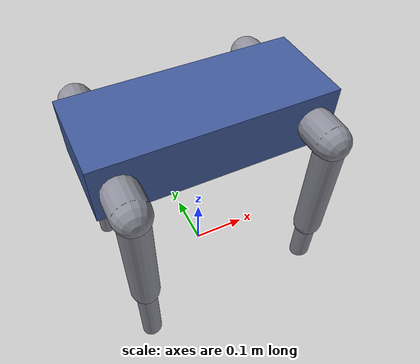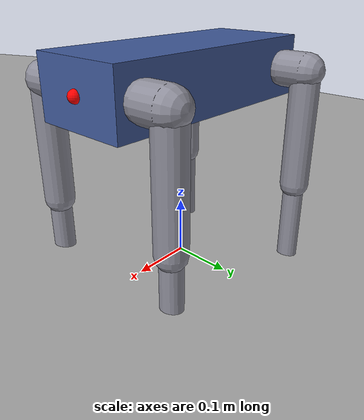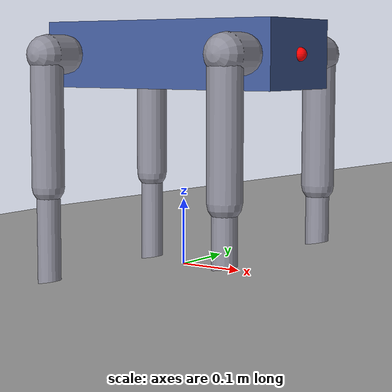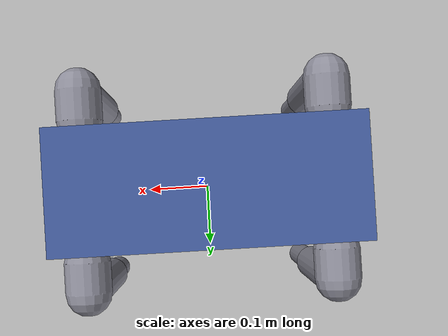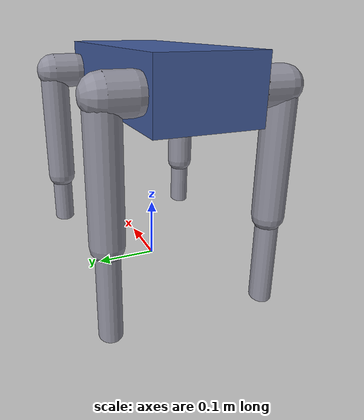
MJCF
<mujoco model="quadbook_quadruped">

  <compiler angle="radian" autolimits="true"/>
  <option timestep="0.002" integrator="implicitfast" solver="Newton" gravity="0 0 -9.81"/>

  <visual>
    <global offwidth="1600" offheight="1000"/>
    <quality shadowsize="4096"/>
  </visual>

  <default>
    <!-- Shared by all joints: damping and armature inertia (motor rotor). Both contribute a lot to numerical stability -->
    <joint damping="0.2" armature="0.01" frictionloss="0.02"/>
    <geom condim="3" friction="1.0 0.005 0.0001" solref="0.02 1" solimp="0.9 0.95 0.001"/>
    <motor ctrlrange="-12 12" gear="1"/>

    <default class="torso">
      <geom type="box" rgba="0.25 0.35 0.6 1"/>
    </default>
    <default class="leg">
      <!-- Leg links get separate contype/conaffinity so they never collide with each other: only the feet touch the floor -->
      <geom type="capsule" rgba="0.55 0.55 0.6 1" contype="0" conaffinity="0"/>
      <joint type="hinge"/>
    </default>
    <default class="abduction">
      <joint axis="1 0 0" range="-0.8 0.8"/>
    </default>
    <default class="hip">
      <joint axis="0 1 0" range="-1.2 2.4"/>
    </default>
    <default class="knee">
      <joint axis="0 1 0" range="-2.6 -0.3"/>
    </default>
    <default class="foot">
      <geom type="sphere" size="0.02" rgba="0.15 0.15 0.15 1" contype="1" conaffinity="1" friction="1.0 0.005 0.0001"/>
    </default>
  </default>

  <asset>
    <texture name="grid" type="2d" builtin="checker" rgb1="0.85 0.85 0.85" rgb2="0.65 0.65 0.65" width="300" height="300"/>
    <material name="grid" texture="grid" texrepeat="10 10" reflectance="0.05"/>
    <texture type="skybox" builtin="gradient" rgb1="0.95 0.95 1" rgb2="0.6 0.7 0.9" width="32" height="512"/>
  </asset>

  <worldbody>
    <light pos="1 1 3" dir="-0.3 -0.3 -1" diffuse="0.9 0.9 0.9" castshadow="true"/>
    <geom name="floor" type="plane" size="5 5 0.1" material="grid" contype="1" conaffinity="1" euler="0 -0.17453 0"/>
    <camera name="side" pos="1.6 -1.6 0.7" xyaxes="0.7 0.7 0 -0.25 0.25 0.94"/>
    <camera name="front" pos="1.8 0 0.5" xyaxes="0 1 0 -0.25 0 0.97"/>

    <body name="torso" pos="0 0 0.32">
      <freejoint name="root"/>
      <geom name="torso_geom" class="torso" size="0.2 0.08 0.05" mass="4.0"/>
      <site name="imu" pos="0 0 0" size="0.01"/>
      <site name="torso_front" pos="0.2 0 0" size="0.01" rgba="1 0 0 1"/>

      <!-- ===== Left front leg LF ===== -->
      <body name="LF_hip" pos="0.16 0.09 0">
        <joint name="LF_abduction" class="abduction"/>
        <geom class="leg" fromto="0 0 0 0 0.04 0" size="0.03" mass="0.2"/>
        <body name="LF_thigh" pos="0 0.04 0">
          <joint name="LF_hip" class="hip"/>
          <geom class="leg" fromto="0 0 0 0 0 -0.2" size="0.025" mass="0.6"/>
          <body name="LF_calf" pos="0 0 -0.2">
            <joint name="LF_knee" class="knee"/>
            <geom class="leg" fromto="0 0 0 0 0 -0.2" size="0.018" mass="0.3"/>
            <geom name="LF_foot" class="foot" pos="0 0 -0.2" mass="0.05"/>
            <site name="LF_foot_site" pos="0 0 -0.2" size="0.022"/>
          </body>
        </body>
      </body>

      <!-- ===== Right front leg RF ===== -->
      <body name="RF_hip" pos="0.16 -0.09 0">
        <joint name="RF_abduction" class="abduction"/>
        <geom class="leg" fromto="0 0 0 0 -0.04 0" size="0.03" mass="0.2"/>
        <body name="RF_thigh" pos="0 -0.04 0">
          <joint name="RF_hip" class="hip"/>
          <geom class="leg" fromto="0 0 0 0 0 -0.2" size="0.025" mass="0.6"/>
          <body name="RF_calf" pos="0 0 -0.2">
            <joint name="RF_knee" class="knee"/>
            <geom class="leg" fromto="0 0 0 0 0 -0.2" size="0.018" mass="0.3"/>
            <geom name="RF_foot" class="foot" pos="0 0 -0.2" mass="0.05"/>
            <site name="RF_foot_site" pos="0 0 -0.2" size="0.022"/>
          </body>
        </body>
      </body>

      <!-- ===== Left hind leg LH ===== -->
      <body name="LH_hip" pos="-0.16 0.09 0">
        <joint name="LH_abduction" class="abduction"/>
        <geom class="leg" fromto="0 0 0 0 0.04 0" size="0.03" mass="0.2"/>
        <body name="LH_thigh" pos="0 0.04 0">
          <joint name="LH_hip" class="hip"/>
          <geom class="leg" fromto="0 0 0 0 0 -0.2" size="0.025" mass="0.6"/>
          <body name="LH_calf" pos="0 0 -0.2">
            <joint name="LH_knee" class="knee"/>
            <geom class="leg" fromto="0 0 0 0 0 -0.2" size="0.018" mass="0.3"/>
            <geom name="LH_foot" class="foot" pos="0 0 -0.2" mass="0.05"/>
            <site name="LH_foot_site" pos="0 0 -0.2" size="0.022"/>
          </body>
        </body>
      </body>

      <!-- ===== Right hind leg RH ===== -->
      <body name="RH_hip" pos="-0.16 -0.09 0">
        <joint name="RH_abduction" class="abduction"/>
        <geom class="leg" fromto="0 0 0 0 -0.04 0" size="0.03" mass="0.2"/>
        <body name="RH_thigh" pos="0 -0.04 0">
          <joint name="RH_hip" class="hip"/>
          <geom class="leg" fromto="0 0 0 0 0 -0.2" size="0.025" mass="0.6"/>
          <body name="RH_calf" pos="0 0 -0.2">
            <joint name="RH_knee" class="knee"/>
            <geom class="leg" fromto="0 0 0 0 0 -0.2" size="0.018" mass="0.3"/>
            <geom name="RH_foot" class="foot" pos="0 0 -0.2" mass="0.05"/>
            <site name="RH_foot_site" pos="0 0 -0.2" size="0.022"/>
          </body>
        </body>
      </body>
    </body>
  </worldbody>

  <!-- Actuators: one torque motor per joint. Order is LF, RF, LH, RH × (abduction, hip, knee) -->
  <actuator>
    <motor name="LF_abduction" joint="LF_abduction"/>
    <motor name="LF_hip" joint="LF_hip"/>
    <motor name="LF_knee" joint="LF_knee"/>
    <motor name="RF_abduction" joint="RF_abduction"/>
    <motor name="RF_hip" joint="RF_hip"/>
    <motor name="RF_knee" joint="RF_knee"/>
    <motor name="LH_abduction" joint="LH_abduction"/>
    <motor name="LH_hip" joint="LH_hip"/>
    <motor name="LH_knee" joint="LH_knee"/>
    <motor name="RH_abduction" joint="RH_abduction"/>
    <motor name="RH_hip" joint="RH_hip"/>
    <motor name="RH_knee" joint="RH_knee"/>
  </actuator>

  <!-- Sensors: 12 joints × (position, velocity), torso IMU (orientation, angular velocity, acceleration), 4 foot contacts -->
  <sensor>
    <jointpos name="LF_abduction_pos" joint="LF_abduction"/>
    <jointpos name="LF_hip_pos" joint="LF_hip"/>
    <jointpos name="LF_knee_pos" joint="LF_knee"/>
    <jointpos name="RF_abduction_pos" joint="RF_abduction"/>
    <jointpos name="RF_hip_pos" joint="RF_hip"/>
    <jointpos name="RF_knee_pos" joint="RF_knee"/>
    <jointpos name="LH_abduction_pos" joint="LH_abduction"/>
    <jointpos name="LH_hip_pos" joint="LH_hip"/>
    <jointpos name="LH_knee_pos" joint="LH_knee"/>
    <jointpos name="RH_abduction_pos" joint="RH_abduction"/>
    <jointpos name="RH_hip_pos" joint="RH_hip"/>
    <jointpos name="RH_knee_pos" joint="RH_knee"/>
    <jointvel name="LF_abduction_vel" joint="LF_abduction"/>
    <jointvel name="LF_hip_vel" joint="LF_hip"/>
    <jointvel name="LF_knee_vel" joint="LF_knee"/>
    <jointvel name="RF_abduction_vel" joint="RF_abduction"/>
    <jointvel name="RF_hip_vel" joint="RF_hip"/>
    <jointvel name="RF_knee_vel" joint="RF_knee"/>
    <jointvel name="LH_abduction_vel" joint="LH_abduction"/>
    <jointvel name="LH_hip_vel" joint="LH_hip"/>
    <jointvel name="LH_knee_vel" joint="LH_knee"/>
    <jointvel name="RH_abduction_vel" joint="RH_abduction"/>
    <jointvel name="RH_hip_vel" joint="RH_hip"/>
    <jointvel name="RH_knee_vel" joint="RH_knee"/>
    <framequat name="torso_quat" objtype="site" objname="imu"/>
    <gyro name="torso_gyro" site="imu"/>
    <accelerometer name="torso_acc" site="imu"/>
    <touch name="LF_touch" site="LF_foot_site"/>
    <touch name="RF_touch" site="RF_foot_site"/>
    <touch name="LH_touch" site="LH_foot_site"/>
    <touch name="RH_touch" site="RH_foot_site"/>
  </sensor>

  <!-- Keyframe: standing pose. qpos = torso position 3 + orientation quaternion 4 + joints 12 -->
  <keyframe>
    <key name="stand"
         qpos="0 0 0.31  1 0 0 0
               0 0.8 -1.5   0 0.8 -1.5   0 0.8 -1.5   0 0.8 -1.5"/>
  </keyframe>
</mujoco>
